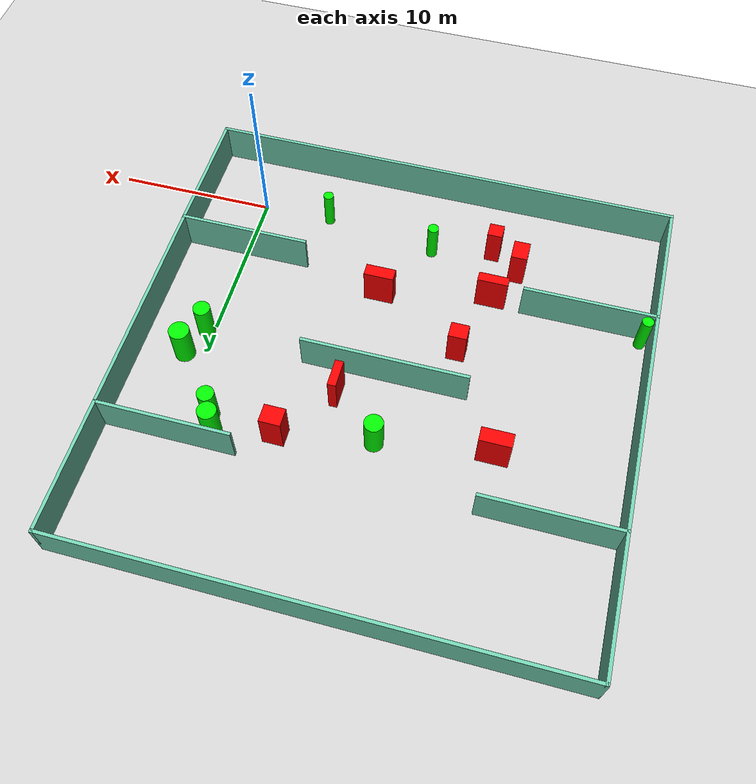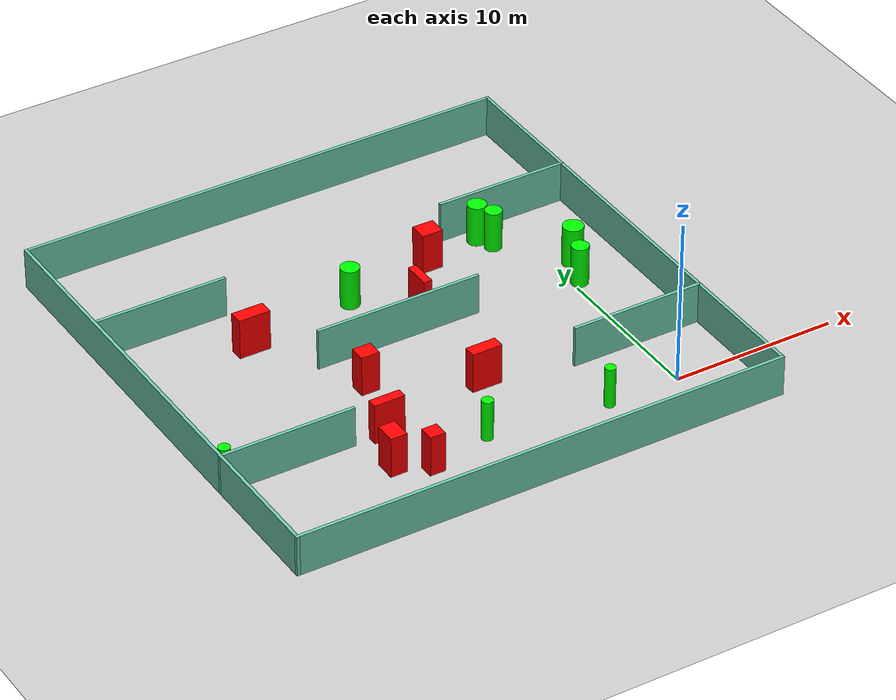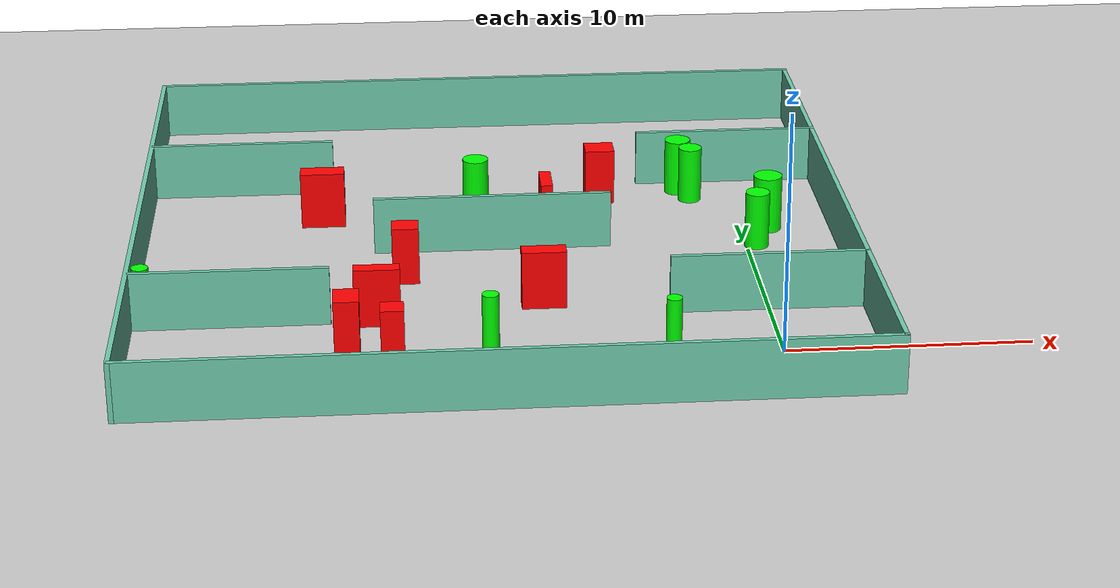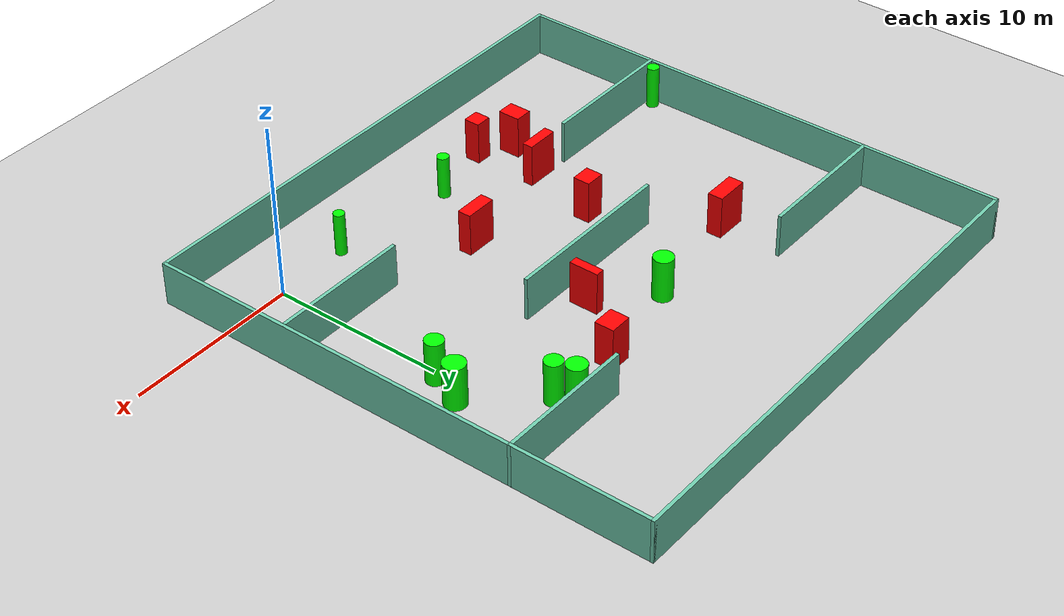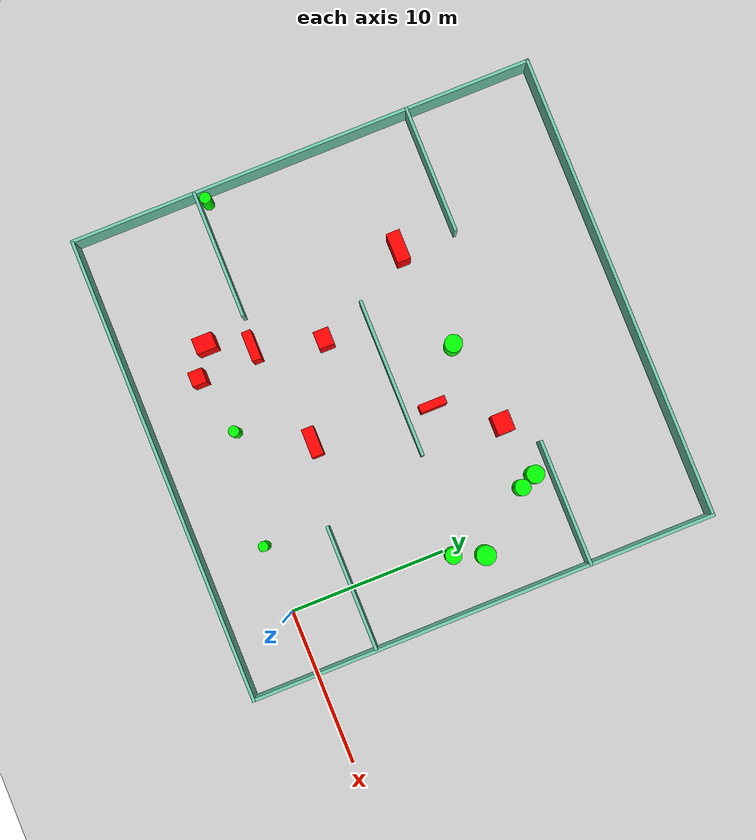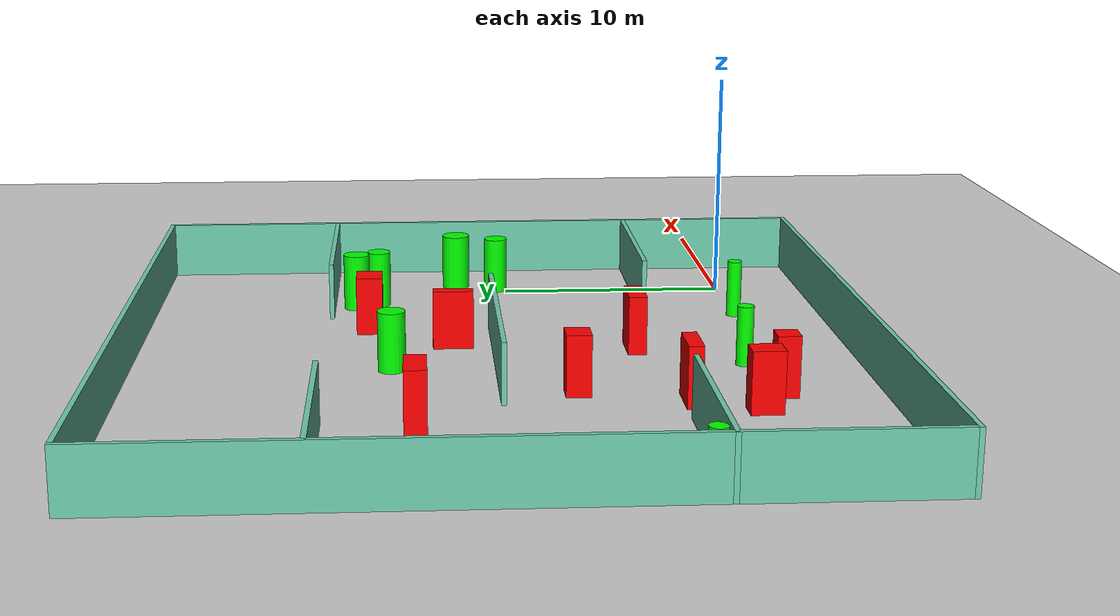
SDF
<sdf version="1.7">
 <world name="default">
  <light name="sun" type="directional">
   <pose>0 0 10 0 -0 0</pose>
   <diffuse>0.8 0.8 0.8 1</diffuse>
   <specular>0.2 0.2 0.2 1</specular>
   <attenuation>
    <range>1000</range>
    <constant>0.9</constant>
    <linear>0.01</linear>
    <quadratic>0.001</quadratic>
   </attenuation>
   <direction>-0.5 0.1 -0.9</direction>
   <spot><inner_angle>0</inner_angle><outer_angle>0</outer_angle><falloff>0</falloff></spot>
  </light>
  <model name="ground_plane">
   <static>1</static>
   <link name="link">
    <collision name="collision">
     <geometry><plane><normal>0 0 1</normal><size>100 100</size></plane></geometry>
     <surface>
      <contact><collide_bitmask>65535</collide_bitmask></contact>
      <friction><ode><mu>100</mu><mu2>50</mu2></ode></friction>
     </surface>
    </collision>
    <visual name="visual">
     <cast_shadows>0</cast_shadows>
     <geometry><plane><normal>0 0 1</normal><size>100 100</size></plane></geometry>
     <material>
      <script><uri>file://media/materials/scripts/gazebo.material</uri><name>Gazebo/Grey</name></script>
     </material>
    </visual>
   </link>
  </model>
  <gravity>0 0 -9.8</gravity>
  <magnetic_field>6e-06 2.3e-05 -4.2e-05</magnetic_field>
  <atmosphere type="adiabatic"/>
  <physics type="ode">
   <max_step_size>0.001</max_step_size>
   <real_time_factor>1</real_time_factor>
   <real_time_update_rate>1000</real_time_update_rate>
  </physics>
  <scene><ambient>0.4 0.4 0.4 1</ambient><background>0.7 0.7 0.7 1</background><shadows>1</shadows></scene>
  <spherical_coordinates>
   <surface_model>EARTH_WGS84</surface_model>
   <latitude_deg>0</latitude_deg>
   <longitude_deg>0</longitude_deg>
   <elevation>0</elevation>
   <heading_deg>0</heading_deg>
  </spherical_coordinates>
  <model name="my_base_walls">
   <link name="Wall_10">
    <collision name="Wall_10_Collision">
     <geometry><box><size>8.2 0.2 2.5</size></box></geometry>
     <pose>0 0 1.25 0 -0 0</pose>
    </collision>
    <visual name="Wall_10_Visual">
     <pose>0 0 1.25 0 -0 0</pose>
     <geometry><box><size>8.2 0.2 2.5</size></box></geometry>
     <material>
      <script><uri>file://media/materials/scripts/gazebo.material</uri><name>Gazebo/Grey</name></script>
      <ambient>0.435294 0.796078 0.67451 1</ambient>
     </material>
     <meta><layer>0</layer></meta>
    </visual>
    <pose>-11 -7 0 0 -0 0</pose>
   </link>
   <link name="Wall_12">
    <collision name="Wall_12_Collision">
     <geometry><box><size>8.2 0.2 2.5</size></box></geometry>
     <pose>0 0 1.25 0 -0 0</pose>
    </collision>
    <visual name="Wall_12_Visual">
     <pose>0 0 1.25 0 -0 0</pose>
     <geometry><box><size>8.2 0.2 2.5</size></box></geometry>
     <material>
      <script><uri>file://media/materials/scripts/gazebo.material</uri><name>Gazebo/Grey</name></script>
      <ambient>0.435294 0.796078 0.67451 1</ambient>
     </material>
     <meta><layer>0</layer></meta>
    </visual>
    <pose>-11 7 0 0 -0 0</pose>
   </link>
   <link name="Wall_14">
    <collision name="Wall_14_Collision">
     <geometry><box><size>8.2 0.2 2.5</size></box></geometry>
     <pose>0 0 1.25 0 -0 0</pose>
    </collision>
    <visual name="Wall_14_Visual">
     <pose>0 0 1.25 0 -0 0</pose>
     <geometry><box><size>8.2 0.2 2.5</size></box></geometry>
     <material>
      <script><uri>file://media/materials/scripts/gazebo.material</uri><name>Gazebo/Grey</name></script>
      <ambient>0.435294 0.796078 0.67451 1</ambient>
     </material>
     <meta><layer>0</layer></meta>
    </visual>
    <pose>11 7 0 0 -0 3.14159</pose>
   </link>
   <link name="Wall_16">
    <collision name="Wall_16_Collision">
     <geometry><box><size>10.2 0.2 2.5</size></box></geometry>
     <pose>0 0 1.25 0 -0 0</pose>
    </collision>
    <visual name="Wall_16_Visual">
     <pose>0 0 1.25 0 -0 0</pose>
     <geometry><box><size>10.2 0.2 2.5</size></box></geometry>
     <material>
      <script><uri>file://media/materials/scripts/gazebo.material</uri><name>Gazebo/Grey</name></script>
      <ambient>0.435294 0.796078 0.67451 1</ambient>
     </material>
     <meta><layer>0</layer></meta>
    </visual>
    <pose>0 0 0 0 -0 3.14159</pose>
   </link>
   <link name="Wall_2">
    <collision name="Wall_2_Collision">
     <geometry><box><size>30.2 0.2 2.5</size></box></geometry>
     <pose>0 0 1.25 0 -0 0</pose>
    </collision>
    <visual name="Wall_2_Visual">
     <pose>0 0 1.25 0 -0 0</pose>
     <geometry><box><size>30.2 0.2 2.5</size></box></geometry>
     <material>
      <script><uri>file://media/materials/scripts/gazebo.material</uri><name>Gazebo/Grey</name></script>
      <ambient>0.435294 0.796078 0.67451 1</ambient>
     </material>
     <meta><layer>0</layer></meta>
    </visual>
    <pose>0 -15 0 0 -0 3.14159</pose>
   </link>
   <link name="Wall_3">
    <collision name="Wall_3_Collision">
     <geometry><box><size>30.2 0.2 2.5</size></box></geometry>
     <pose>0 0 1.25 0 -0 0</pose>
    </collision>
    <visual name="Wall_3_Visual">
     <pose>0 0 1.25 0 -0 0</pose>
     <geometry><box><size>30.2 0.2 2.5</size></box></geometry>
     <material>
      <script><uri>file://media/materials/scripts/gazebo.material</uri><name>Gazebo/Grey</name></script>
      <ambient>0.435294 0.796078 0.67451 1</ambient>
     </material>
     <meta><layer>0</layer></meta>
    </visual>
    <pose>-15 0 0 0 -0 1.5708</pose>
   </link>
   <link name="Wall_4">
    <collision name="Wall_4_Collision">
     <geometry><box><size>30.2 0.2 2.5</size></box></geometry>
     <pose>0 0 1.25 0 -0 0</pose>
    </collision>
    <visual name="Wall_4_Visual">
     <pose>0 0 1.25 0 -0 0</pose>
     <geometry><box><size>30.2 0.2 2.5</size></box></geometry>
     <material>
      <script><uri>file://media/materials/scripts/gazebo.material</uri><name>Gazebo/Grey</name></script>
      <ambient>0.435294 0.796078 0.67451 1</ambient>
     </material>
     <meta><layer>0</layer></meta>
    </visual>
    <pose>0 15 0 0 -0 0</pose>
   </link>
   <link name="Wall_6">
    <collision name="Wall_6_Collision">
     <geometry><box><size>30.2 0.2 2.5</size></box></geometry>
     <pose>0 0 1.25 0 -0 0</pose>
    </collision>
    <visual name="Wall_6_Visual">
     <pose>0 0 1.25 0 -0 0</pose>
     <geometry><box><size>30.2 0.2 2.5</size></box></geometry>
     <material>
      <script><uri>file://media/materials/scripts/gazebo.material</uri><name>Gazebo/Grey</name></script>
      <ambient>0.435294 0.796078 0.67451 1</ambient>
     </material>
     <meta><layer>0</layer></meta>
    </visual>
    <pose>15 0 0 0 -0 1.5708</pose>
   </link>
   <link name="Wall_8">
    <collision name="Wall_8_Collision">
     <geometry><box><size>8.2 0.2 2.5</size></box></geometry>
     <pose>0 0 1.25 0 -0 0</pose>
    </collision>
    <visual name="Wall_8_Visual">
     <pose>0 0 1.25 0 -0 0</pose>
     <geometry><box><size>8.2 0.2 2.5</size></box></geometry>
     <material>
      <script><uri>file://media/materials/scripts/gazebo.material</uri><name>Gazebo/Grey</name></script>
      <ambient>0.435294 0.796078 0.67451 1</ambient>
     </material>
     <meta><layer>0</layer></meta>
    </visual>
    <pose>11 -7 0 0 -0 3.14159</pose>
   </link>
   <static>1</static>
   <pose>-11 11 0 0 -0 0</pose>
  </model>
  <model name="cylinder1">
   <static>1</static>
   <link name="link">
    <inertial>
     <mass>1</mass>
     <inertia><ixx>0.5</ixx><ixy>0</ixy><ixz>0</ixz><iyy>0.5</iyy><iyz>0</iyz><izz>1</izz></inertia>
    </inertial>
    <collision name="collision">
     <geometry><cylinder><radius>0.5723918901236251</radius><length>2.5</length></cylinder></geometry>
    </collision>
    <visual name="visual">
     <geometry><cylinder><radius>0.5723918901236251</radius><length>2.5</length></cylinder></geometry>
     <material>
      <ambient>0 1 0 1</ambient>
      <diffuse>0 1 0 1</diffuse>
      <specular>0.1 0.1 0.1 1</specular>
      <emissive>0 0 0 0</emissive>
     </material>
    </visual>
   </link>
   <pose>-2.3034315559471565 16.936342868452243 1.25 0 0 0</pose>
  </model>
  <model name="cylinder2">
   <static>1</static>
   <link name="link">
    <inertial>
     <mass>1</mass>
     <inertia><ixx>0.5</ixx><ixy>0</ixy><ixz>0</ixz><iyy>0.5</iyy><iyz>0</iyz><izz>1</izz></inertia>
    </inertial>
    <collision name="collision">
     <geometry><cylinder><radius>0.6231253753217736</radius><length>2.5</length></cylinder></geometry>
    </collision>
    <visual name="visual">
     <geometry><cylinder><radius>0.6231253753217736</radius><length>2.5</length></cylinder></geometry>
     <material>
      <ambient>0 1 0 1</ambient>
      <diffuse>0 1 0 1</diffuse>
      <specular>0.1 0.1 0.1 1</specular>
      <emissive>0 0 0 0</emissive>
     </material>
    </visual>
   </link>
   <pose>1.144455251236323 12.313387791661544 1.25 0 0 0</pose>
  </model>
  <model name="cylinder3">
   <static>1</static>
   <link name="link">
    <inertial>
     <mass>1</mass>
     <inertia><ixx>0.5</ixx><ixy>0</ixy><ixz>0</ixz><iyy>0.5</iyy><iyz>0</iyz><izz>1</izz></inertia>
    </inertial>
    <collision name="collision">
     <geometry><cylinder><radius>0.5119916195050126</radius><length>2.5</length></cylinder></geometry>
    </collision>
    <visual name="visual">
     <geometry><cylinder><radius>0.5119916195050126</radius><length>2.5</length></cylinder></geometry>
     <material>
      <ambient>0 1 0 1</ambient>
      <diffuse>0 1 0 1</diffuse>
      <specular>0.1 0.1 0.1 1</specular>
      <emissive>0 0 0 0</emissive>
     </material>
    </visual>
   </link>
   <pose>-1.8476425000614078 15.917964936001571 1.25 0 0 0</pose>
  </model>
  <model name="cylinder4">
   <static>1</static>
   <link name="link">
    <inertial>
     <mass>1</mass>
     <inertia><ixx>0.5</ixx><ixy>0</ixy><ixz>0</ixz><iyy>0.5</iyy><iyz>0</iyz><izz>1</izz></inertia>
    </inertial>
    <collision name="collision">
     <geometry><cylinder><radius>0.5665039593291354</radius><length>2.5</length></cylinder></geometry>
    </collision>
    <visual name="visual">
     <geometry><cylinder><radius>0.5665039593291354</radius><length>2.5</length></cylinder></geometry>
     <material>
      <ambient>0 1 0 1</ambient>
      <diffuse>0 1 0 1</diffuse>
      <specular>0.1 0.1 0.1 1</specular>
      <emissive>0 0 0 0</emissive>
     </material>
    </visual>
   </link>
   <pose>-11.547163294043683 15.290691722559583 1.25 0 0 0</pose>
  </model>
  <model name="cylinder5">
   <static>1</static>
   <link name="link">
    <inertial>
     <mass>1</mass>
     <inertia><ixx>0.5</ixx><ixy>0</ixy><ixz>0</ixz><iyy>0.5</iyy><iyz>0</iyz><izz>1</izz></inertia>
    </inertial>
    <collision name="collision">
     <geometry><cylinder><radius>0.5194415650073785</radius><length>2.5</length></cylinder></geometry>
    </collision>
    <visual name="visual">
     <geometry><cylinder><radius>0.5194415650073785</radius><length>2.5</length></cylinder></geometry>
     <material>
      <ambient>0 1 0 1</ambient>
      <diffuse>0 1 0 1</diffuse>
      <specular>0.1 0.1 0.1 1</specular>
      <emissive>0 0 0 0</emissive>
     </material>
    </visual>
   </link>
   <pose>0.4240860152549395 10.461996551340164 1.25 0 0 0</pose>
  </model>
  <model name="cylinder6">
   <static>1</static>
   <link name="link">
    <inertial>
     <mass>1</mass>
     <inertia><ixx>0.5</ixx><ixy>0</ixy><ixz>0</ixz><iyy>0.5</iyy><iyz>0</iyz><izz>1</izz></inertia>
    </inertial>
    <collision name="collision">
     <geometry><cylinder><radius>0.34977902606627526</radius><length>2.5</length></cylinder></geometry>
    </collision>
    <visual name="visual">
     <geometry><cylinder><radius>0.34977902606627526</radius><length>2.5</length></cylinder></geometry>
     <material>
      <ambient>0 1 0 1</ambient>
      <diffuse>0 1 0 1</diffuse>
      <specular>0.1 0.1 0.1 1</specular>
      <emissive>0 0 0 0</emissive>
     </material>
    </visual>
   </link>
   <pose>-25.481855675941254 4.530810718267295 1.25 0 0 0</pose>
  </model>
  <model name="cylinder7">
   <static>1</static>
   <link name="link">
    <inertial>
     <mass>1</mass>
     <inertia><ixx>0.5</ixx><ixy>0</ixy><ixz>0</ixz><iyy>0.5</iyy><iyz>0</iyz><izz>1</izz></inertia>
    </inertial>
    <collision name="collision">
     <geometry><cylinder><radius>0.3153618252831177</radius><length>2.5</length></cylinder></geometry>
    </collision>
    <visual name="visual">
     <geometry><cylinder><radius>0.3153618252831177</radius><length>2.5</length></cylinder></geometry>
     <material>
      <ambient>0 1 0 1</ambient>
      <diffuse>0 1 0 1</diffuse>
      <specular>0.1 0.1 0.1 1</specular>
      <emissive>0 0 0 0</emissive>
     </material>
    </visual>
   </link>
   <pose>-4.398586220998482 -0.023052133672904596 1.25 0 0 0</pose>
  </model>
  <model name="cylinder8">
   <static>1</static>
   <link name="link">
    <inertial>
     <mass>1</mass>
     <inertia><ixx>0.5</ixx><ixy>0</ixy><ixz>0</ixz><iyy>0.5</iyy><iyz>0</iyz><izz>1</izz></inertia>
    </inertial>
    <collision name="collision">
     <geometry><cylinder><radius>0.3406938380615735</radius><length>2.5</length></cylinder></geometry>
    </collision>
    <visual name="visual">
     <geometry><cylinder><radius>0.3406938380615735</radius><length>2.5</length></cylinder></geometry>
     <material>
      <ambient>0 1 0 1</ambient>
      <diffuse>0 1 0 1</diffuse>
      <specular>0.1 0.1 0.1 1</specular>
      <emissive>0 0 0 0</emissive>
     </material>
    </visual>
   </link>
   <pose>-11.563140154279942 0.8885980130803772 1.25 0 0 0</pose>
  </model>
  <model name="box1">
   <static>1</static>
   <link name="link">
    <inertial>
     <mass>1</mass>
     <inertia><ixx>0.083</ixx><ixy>0</ixy><ixz>0</ixz><iyy>0.083</iyy><iyz>0</iyz><izz>0.083</izz></inertia>
    </inertial>
    <collision name="collision">
     <geometry><box><size>0.932669616006566 0.9215917666850914 2.5</size></box></geometry>
    </collision>
    <visual name="visual">
     <geometry><box><size>0.932669616006566 0.9215917666850914 2.5</size></box></geometry>
     <material>
      <ambient>1 0 0 1</ambient>
      <diffuse>1 0 0 1</diffuse>
      <specular>0.1 0.1 0.1 1</specular>
      <emissive>0 0 0 0</emissive>
     </material>
    </visual>
    <sensor name="my_contact" type="contact">
     <contact><collision>box_collision</collision><topic>__default_topic__</topic></contact>
    </sensor>
   </link>
   <pose>-15.432759581190098 0.030850491030807614 1.25 0 0 0</pose>
  </model>
  <model name="box2">
   <static>1</static>
   <link name="link">
    <inertial>
     <mass>1</mass>
     <inertia><ixx>0.083</ixx><ixy>0</ixy><ixz>0</ixz><iyy>0.083</iyy><iyz>0</iyz><izz>0.083</izz></inertia>
    </inertial>
    <collision name="collision">
     <geometry><box><size>1.846462060003035 0.7671921388294983 2.5</size></box></geometry>
    </collision>
    <visual name="visual">
     <geometry><box><size>1.846462060003035 0.7671921388294983 2.5</size></box></geometry>
     <material>
      <ambient>1 0 0 1</ambient>
      <diffuse>1 0 0 1</diffuse>
      <specular>0.1 0.1 0.1 1</specular>
      <emissive>0 0 0 0</emissive>
     </material>
    </visual>
    <sensor name="my_contact" type="contact">
     <contact><collision>box_collision</collision><topic>__default_topic__</topic></contact>
    </sensor>
   </link>
   <pose>-9.185370222674972 5.087704430485241 1.25 0 0 0</pose>
  </model>
  <model name="box3">
   <static>1</static>
   <link name="link">
    <inertial>
     <mass>1</mass>
     <inertia><ixx>0.083</ixx><ixy>0</ixy><ixz>0</ixz><iyy>0.083</iyy><iyz>0</iyz><izz>0.083</izz></inertia>
    </inertial>
    <collision name="collision">
     <geometry><box><size>1.9150239778117835 0.8712233884935088 2.5</size></box></geometry>
    </collision>
    <visual name="visual">
     <geometry><box><size>1.9150239778117835 0.8712233884935088 2.5</size></box></geometry>
     <material>
      <ambient>1 0 0 1</ambient>
      <diffuse>1 0 0 1</diffuse>
      <specular>0.1 0.1 0.1 1</specular>
      <emissive>0 0 0 0</emissive>
     </material>
    </visual>
    <sensor name="my_contact" type="contact">
     <contact><collision>box_collision</collision><topic>__default_topic__</topic></contact>
    </sensor>
   </link>
   <pose>-18.317165189496315 14.384672569268663 1.25 0 0 0</pose>
  </model>
  <model name="box4">
   <static>1</static>
   <link name="link">
    <inertial>
     <mass>1</mass>
     <inertia><ixx>0.083</ixx><ixy>0</ixy><ixz>0</ixz><iyy>0.083</iyy><iyz>0</iyz><izz>0.083</izz></inertia>
    </inertial>
    <collision name="collision">
     <geometry><box><size>1.1261341735773982 0.9968477613889195 2.5</size></box></geometry>
    </collision>
    <visual name="visual">
     <geometry><box><size>1.1261341735773982 0.9968477613889195 2.5</size></box></geometry>
     <material>
      <ambient>1 0 0 1</ambient>
      <diffuse>1 0 0 1</diffuse>
      <specular>0.1 0.1 0.1 1</specular>
      <emissive>0 0 0 0</emissive>
     </material>
    </visual>
    <sensor name="my_contact" type="contact">
     <contact><collision>box_collision</collision><topic>__default_topic__</topic></contact>
    </sensor>
   </link>
   <pose>-14.797639225158507 8.064429645461018 1.25 0 0 0</pose>
  </model>
  <model name="box5">
   <static>1</static>
   <link name="link">
    <inertial>
     <mass>1</mass>
     <inertia><ixx>0.083</ixx><ixy>0</ixy><ixz>0</ixz><iyy>0.083</iyy><iyz>0</iyz><izz>0.083</izz></inertia>
    </inertial>
    <collision name="collision">
     <geometry><box><size>0.5117450394092135 1.6972894232925775 2.5</size></box></geometry>
    </collision>
    <visual name="visual">
     <geometry><box><size>0.5117450394092135 1.6972894232925775 2.5</size></box></geometry>
     <material>
      <ambient>1 0 0 1</ambient>
      <diffuse>1 0 0 1</diffuse>
      <specular>0.1 0.1 0.1 1</specular>
      <emissive>0 0 0 0</emissive>
     </material>
    </visual>
    <sensor name="my_contact" type="contact">
     <contact><collision>box_collision</collision><topic>__default_topic__</topic></contact>
    </sensor>
   </link>
   <pose>-8.585507414808234 12.72211090209236 1.25 0 0 0</pose>
  </model>
  <model name="box6">
   <static>1</static>
   <link name="link">
    <inertial>
     <mass>1</mass>
     <inertia><ixx>0.083</ixx><ixy>0</ixy><ixz>0</ixz><iyy>0.083</iyy><iyz>0</iyz><izz>0.083</izz></inertia>
    </inertial>
    <collision name="collision">
     <geometry><box><size>1.8886757947210413 0.6070162730320938 2.5</size></box></geometry>
    </collision>
    <visual name="visual">
     <geometry><box><size>1.8886757947210413 0.6070162730320938 2.5</size></box></geometry>
     <material>
      <ambient>1 0 0 1</ambient>
      <diffuse>1 0 0 1</diffuse>
      <specular>0.1 0.1 0.1 1</specular>
      <emissive>0 0 0 0</emissive>
     </material>
    </visual>
    <sensor name="my_contact" type="contact">
     <contact><collision>box_collision</collision><topic>__default_topic__</topic></contact>
    </sensor>
   </link>
   <pose>-16.019136734241446 3.8051848414202896 1.25 0 0 0</pose>
  </model>
  <model name="box7">
   <static>1</static>
   <link name="link">
    <inertial>
     <mass>1</mass>
     <inertia><ixx>0.083</ixx><ixy>0</ixy><ixz>0</ixz><iyy>0.083</iyy><iyz>0</iyz><izz>0.083</izz></inertia>
    </inertial>
    <collision name="collision">
     <geometry><box><size>1.0143901290163448 1.2918817793312092 2.5</size></box></geometry>
    </collision>
    <visual name="visual">
     <geometry><box><size>1.0143901290163448 1.2918817793312092 2.5</size></box></geometry>
     <material>
      <ambient>1 0 0 1</ambient>
      <diffuse>1 0 0 1</diffuse>
      <specular>0.1 0.1 0.1 1</specular>
      <emissive>0 0 0 0</emissive>
     </material>
    </visual>
    <sensor name="my_contact" type="contact">
     <contact><collision>box_collision</collision><topic>__default_topic__</topic></contact>
    </sensor>
   </link>
   <pose>-17.224743108482134 1.1932715456049765 1.25 0 0 0</pose>
  </model>
  <model name="box8">
   <static>1</static>
   <link name="link">
    <inertial>
     <mass>1</mass>
     <inertia><ixx>0.083</ixx><ixy>0</ixy><ixz>0</ixz><iyy>0.083</iyy><iyz>0</iyz><izz>0.083</izz></inertia>
    </inertial>
    <collision name="collision">
     <geometry><box><size>1.2866885170638884 1.119111143768868 2.5</size></box></geometry>
    </collision>
    <visual name="visual">
     <geometry><box><size>1.2866885170638884 1.119111143768868 2.5</size></box></geometry>
     <material>
      <ambient>1 0 0 1</ambient>
      <diffuse>1 0 0 1</diffuse>
      <specular>0.1 0.1 0.1 1</specular>
      <emissive>0 0 0 0</emissive>
     </material>
    </visual>
    <sensor name="my_contact" type="contact">
     <contact><collision>box_collision</collision><topic>__default_topic__</topic></contact>
    </sensor>
   </link>
   <pose>-5.942955916845726 16.273026036404705 1.25 0 0 0</pose>
  </model>
 </world>
</sdf>
